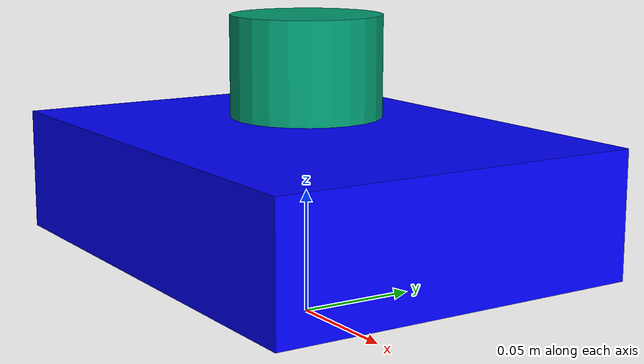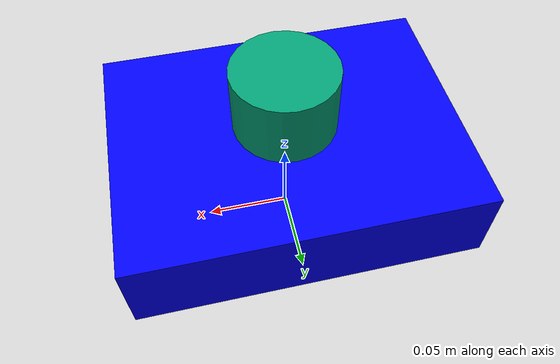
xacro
<?xml version="1.0"?>
<robot xmlns:xacro="http://www.ros.org/wiki/xacro" name="maze_bot">
  <link name="base_link">
    <visual>
      <geometry><box size="0.2 0.15 0.05"/></geometry>
      <material name="blue"><color rgba="0 0 1 1"/></material>
    </visual>
    <collision><geometry><box size="0.2 0.15 0.05"/></geometry></collision>
    <inertial><mass value="1.0"/><inertia ixx="0.01" ixy="0" ixz="0" iyy="0.01" iyz="0" izz="0.01"/></inertial>
  </link>
  <link name="base_footprint"/>
  <joint name="base_joint" type="fixed">
    <parent link="base_footprint"/>
    <child link="base_link"/>
    <origin xyz="0 0 0.05" rpy="0 0 0"/>
  </joint>
  <link name="laser_frame">
    <visual><geometry><cylinder radius="0.03" length="0.04"/></geometry></visual>
  </link>
  <joint name="laser_joint" type="fixed">
    <parent link="base_link"/>
    <child link="laser_frame"/>
    <origin xyz="0 0 0.05" rpy="0 0 0"/>
  </joint>
  <gazebo reference="laser_frame">
    <sensor type="ray" name="lidar">
      <update_rate>10</update_rate>
      <ray>
        <scan>
          <horizontal>
            <samples>360</samples>
            <resolution>1</resolution>
            <min_angle>-3.14</min_angle>
            <max_angle>3.14</max_angle>
          </horizontal>
        </scan>
        <range><min>0.15</min><max>6.0</max></range>
      </ray>
      <plugin name="scan" filename="libgazebo_ros_ray_sensor.so">
        <ros><remapping>~/out:=scan</remapping></ros>
        <output_type>sensor_msgs/LaserScan</output_type>
      </plugin>
    </sensor>
  </gazebo>
  <gazebo>
    <plugin name="diff_drive" filename="libgazebo_ros_diff_drive.so">
      <left_joint>left_wheel_joint</left_joint>
      <right_joint>right_wheel_joint</right_joint>
      <wheel_separation>0.15</wheel_separation>
      <wheel_diameter>0.06</wheel_diameter>
      <command_topic>cmd_vel</command_topic>
      <odometry_topic>odom</odometry_topic>
      <publish_odom>true</publish_odom>
    </plugin>
  </gazebo>
</robot>
